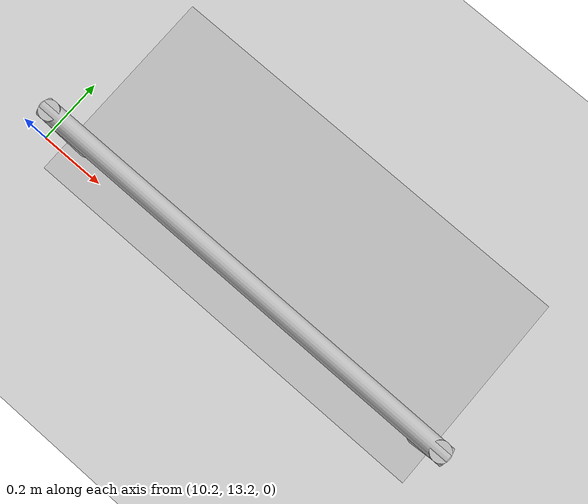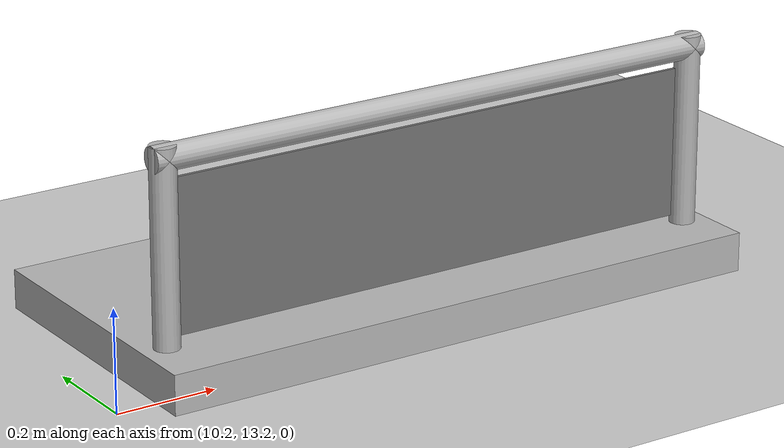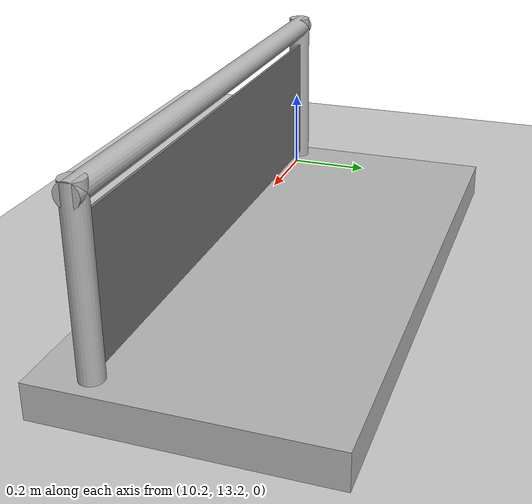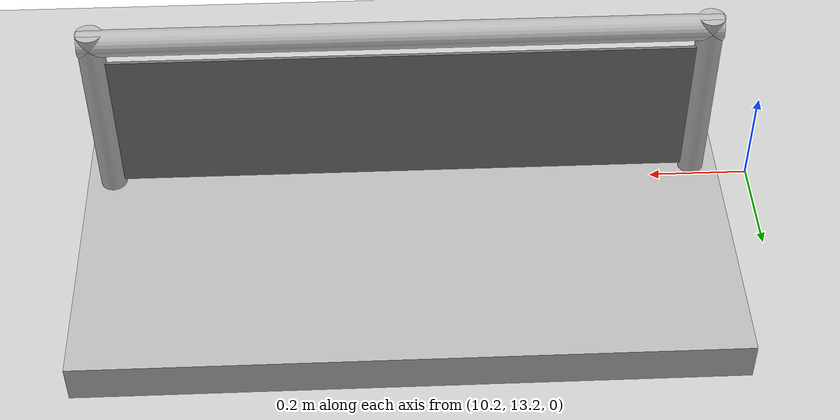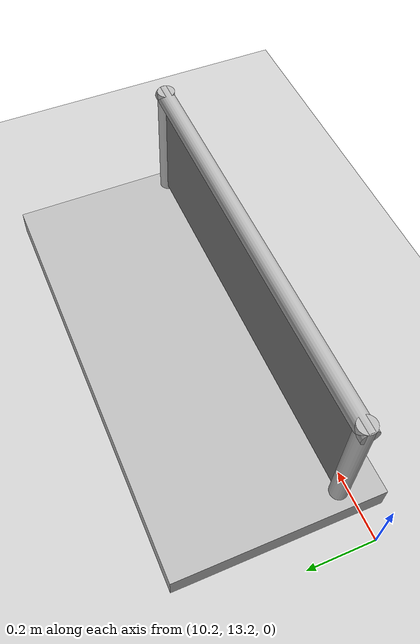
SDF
<sdf version="1.7">
 <world name="default">
  <model name="ground_plane">
   <static>1</static>
   <link name="link">
    <collision name="collision">
     <geometry><plane><normal>0 0 1</normal><size>100 100</size></plane></geometry>
     <surface>
      <contact><collide_bitmask>65535</collide_bitmask></contact>
      <friction><ode><mu>100</mu><mu2>50</mu2></ode></friction>
     </surface>
    </collision>
    <visual name="visual">
     <cast_shadows>0</cast_shadows>
     <geometry><plane><normal>0 0 1</normal><size>100 100</size></plane></geometry>
     <material>
      <script><uri>file://media/materials/scripts/gazebo.material</uri><name>Gazebo/Grey</name></script>
     </material>
    </visual>
   </link>
  </model>
  <model name="frc2016_lowbar">
   <link name="base">
    <inertial>
     <mass>50</mass>
     <inertia>
      <ixx>0.035543</ixx>
      <ixy>0</ixy>
      <ixz>0</ixz>
      <iyy>0.134412</iyy>
      <iyz>0</iyz>
      <izz>0.165376</izz>
     </inertia>
    </inertial>
    <visual name="platform">
     <pose>0 0 0.039065 0 -0 0</pose>
     <geometry><box><size>1.26 0.5996 0.07813</size></box></geometry>
    </visual>
    <collision name="platform">
     <pose>0 0 0.039065 0 -0 0</pose>
     <geometry><box><size>1.27 0.6096 0.07813</size></box></geometry>
    </collision>
    <visual name="right_column">
     <pose>-0.57845 -0.18464 0.26863 0 -0 0</pose>
     <geometry><cylinder><radius>0.0254</radius><length>0.381</length></cylinder></geometry>
    </visual>
    <collision name="right_column">
     <pose>-0.57845 -0.18464 0.26863 0 -0 0</pose>
     <geometry><cylinder><radius>0.0254</radius><length>0.381</length></cylinder></geometry>
    </collision>
    <visual name="left_column">
     <pose>0.57845 -0.18464 0.26863 0 -0 0</pose>
     <geometry><cylinder><radius>0.0254</radius><length>0.381</length></cylinder></geometry>
    </visual>
    <collision name="left_column">
     <pose>0.57845 -0.18464 0.26863 0 -0 0</pose>
     <geometry><cylinder><radius>0.0254</radius><length>0.381</length></cylinder></geometry>
    </collision>
    <visual name="horizontal">
     <pose>0 -0.18464 0.43556 0 1.5707 0</pose>
     <geometry><cylinder><radius>0.0254</radius><length>1.2018</length></cylinder></geometry>
    </visual>
    <collision name="horizontal">
     <pose>0 -0.18464 0.43556 0 1.5707 0</pose>
     <geometry><cylinder><radius>0.0254</radius><length>1.2018</length></cylinder></geometry>
    </collision>
   </link>
   <link name="wall">
    <pose>0 -0.1778 0.24323 0 -0 0</pose>
    <inertial>
     <mass>1</mass>
     <inertia>
      <ixx>0.00774528</ixx>
      <ixy>0</ixy>
      <ixz>0</ixz>
      <iyy>0.116613</iyy>
      <iyz>0</iyz>
      <izz>0.108874</izz>
     </inertia>
    </inertial>
    <visual name="visual">
     <geometry><box><size>1.1176 0.00635 0.3</size></box></geometry>
     <material><ambient>0.46 0.46 0.46 1</ambient><diffuse>0.46 0.46 0.46 1</diffuse></material>
    </visual>
    <collision name="collision"><geometry><box><size>1.143 0.00635 0.3</size></box></geometry></collision>
   </link>
   <joint name="bar_joint" type="revolute">
    <pose>0 0 0.36378 0 -0 0</pose>
    <parent>base</parent>
    <child>wall</child>
    <axis>
     <xyz>1 0 0</xyz>
     <limit><lower>-1.5707</lower><upper>1.5707</upper></limit>
     <dynamics><spring_reference>0</spring_reference><spring_stiffness>0</spring_stiffness></dynamics>
    </axis>
   </joint>
   <pose>10.9114 13.4357 0 0 -0 0</pose>
  </model>
 </world>
</sdf>
